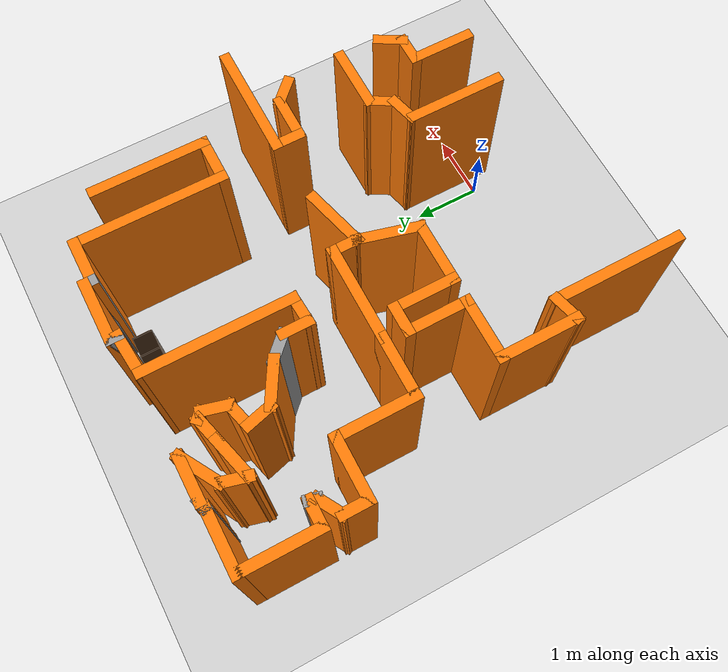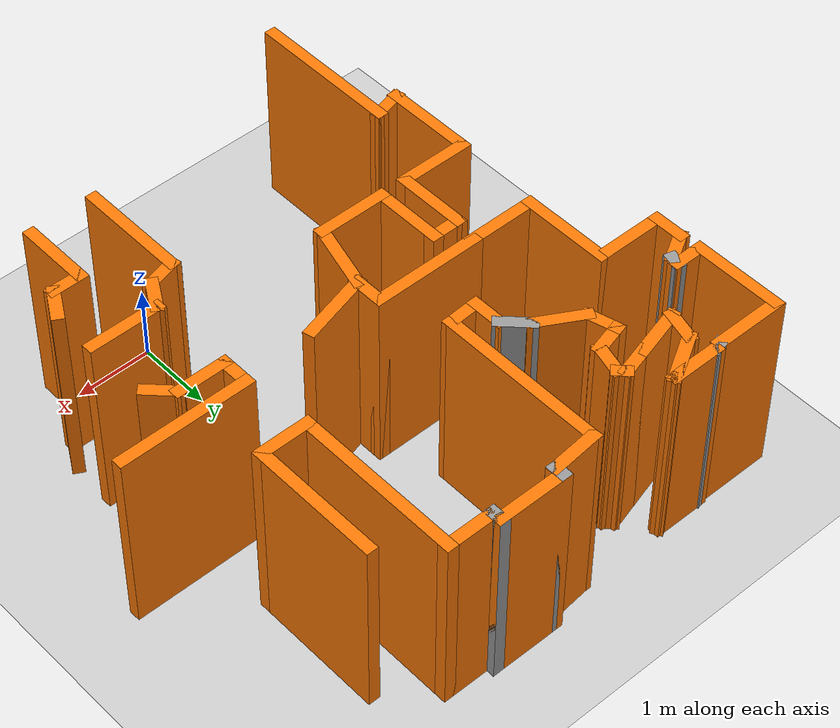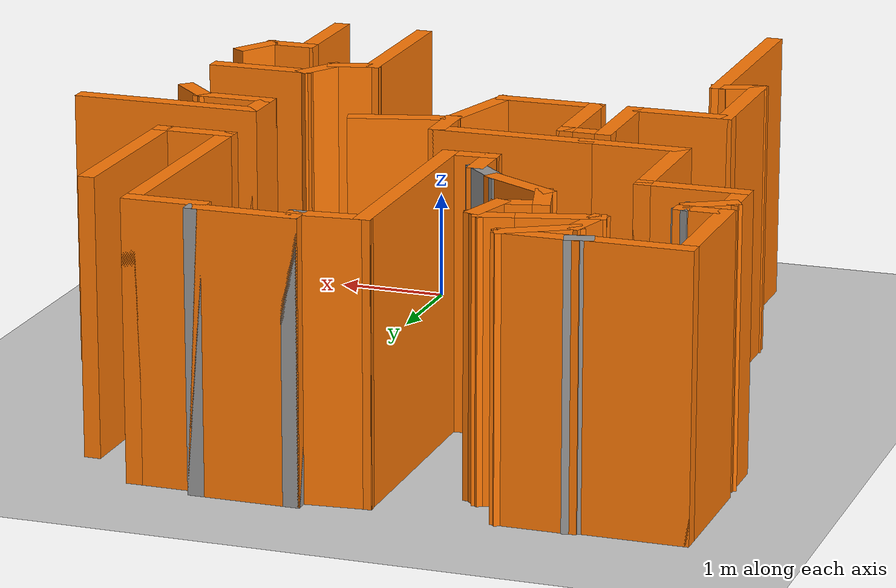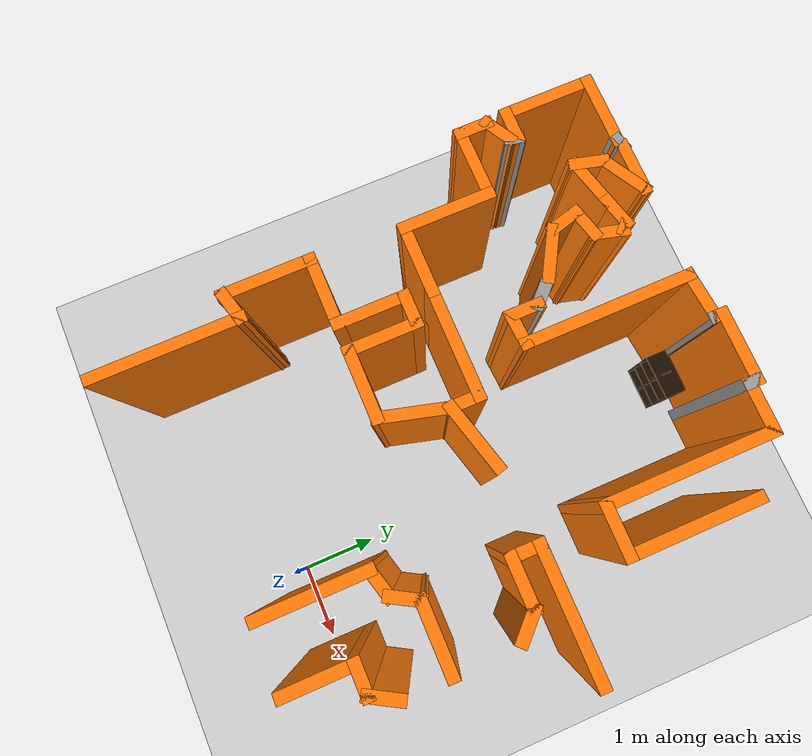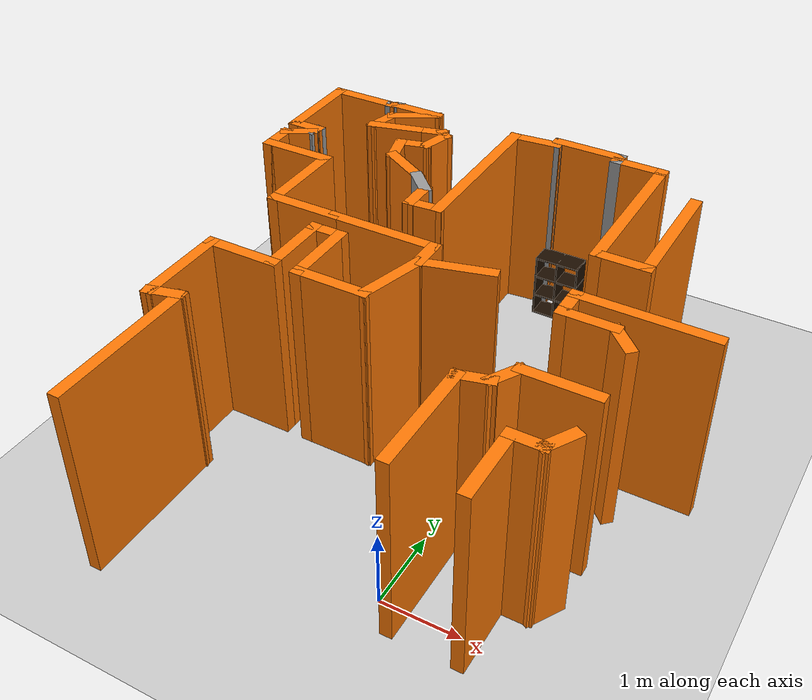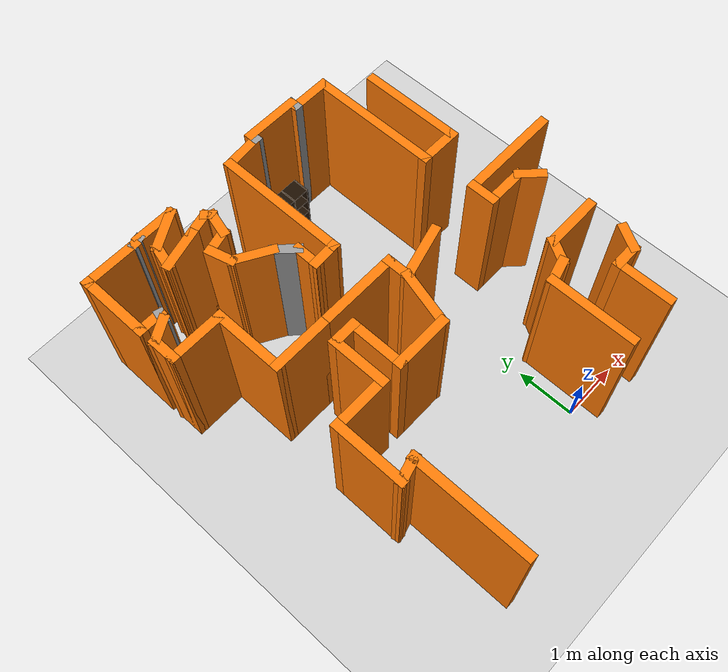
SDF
<sdf version="1.7">
 <world name="default">
  <model name="ground_plane">
   <static>1</static>
   <link name="link">
    <collision name="collision">
     <geometry><plane><normal>0 0 1</normal><size>100 100</size></plane></geometry>
     <surface>
      <contact><collide_bitmask>65535</collide_bitmask></contact>
      <friction><ode><mu>100</mu><mu2>50</mu2></ode></friction>
     </surface>
    </collision>
    <visual name="visual">
     <cast_shadows>0</cast_shadows>
     <geometry><plane><normal>0 0 1</normal><size>100 100</size></plane></geometry>
     <material>
      <script><uri>file://media/materials/scripts/gazebo.material</uri><name>Gazebo/Grey</name></script>
     </material>
    </visual>
   </link>
  </model>
  <model name="map_4">
   <pose>0.04124 -0.27835 0 0 -0 0</pose>
   <link name="Wall_0">
    <collision name="Wall_0_Collision">
     <geometry><box><size>2.25 0.15 2.5</size></box></geometry>
     <pose>0 0 1.25 0 -0 0</pose>
    </collision>
    <visual name="Wall_0_Visual">
     <pose>0 0 1.25 0 -0 0</pose>
     <geometry><box><size>2.25 0.15 2.5</size></box></geometry>
     <material>
      <script><uri>file://media/materials/scripts/gazebo.material</uri><name>Gazebo/Grey</name></script>
      <ambient>0.996078 0.47451 0.0196078 1</ambient>
     </material>
     <meta><layer>0</layer></meta>
    </visual>
    <pose>-1.38482 5.02012 0 0 -0 -1.5708</pose>
   </link>
   <link name="Wall_1">
    <collision name="Wall_1_Collision">
     <geometry><box><size>0.523847 0.15 2.5</size></box></geometry>
     <pose>0 0 1.25 0 -0 0</pose>
    </collision>
    <visual name="Wall_1_Visual">
     <pose>0 0 1.25 0 -0 0</pose>
     <geometry><box><size>0.523847 0.15 2.5</size></box></geometry>
     <material>
      <script><uri>file://media/materials/scripts/gazebo.material</uri><name>Gazebo/Grey</name></script>
      <ambient>0.996078 0.47451 0.0196078 1</ambient>
     </material>
     <meta><layer>0</layer></meta>
    </visual>
    <pose>-1.57139 3.95855 0 0 -0 -3.07968</pose>
   </link>
   <link name="Wall_118">
    <collision name="Wall_118_Collision">
     <geometry><box><size>1.5 0.15 2.5</size></box></geometry>
     <pose>0 0 1.25 0 -0 0</pose>
    </collision>
    <visual name="Wall_118_Visual">
     <pose>0 0 1.25 0 -0 0</pose>
     <geometry><box><size>1.5 0.15 2.5</size></box></geometry>
     <material>
      <script><uri>file://media/materials/scripts/gazebo.material</uri><name>Gazebo/Grey</name></script>
      <ambient>0.996078 0.47451 0.0196078 1</ambient>
     </material>
     <meta><layer>0</layer></meta>
    </visual>
    <pose>0.254748 0.668578 0 0 -0 1.5708</pose>
   </link>
   <link name="Wall_119">
    <collision name="Wall_119_Collision">
     <geometry><box><size>0.5 0.15 2.5</size></box></geometry>
     <pose>0 0 1.25 0 -0 0</pose>
    </collision>
    <visual name="Wall_119_Visual">
     <pose>0 0 1.25 0 -0 0</pose>
     <geometry><box><size>0.5 0.15 2.5</size></box></geometry>
     <material>
      <script><uri>file://media/materials/scripts/gazebo.material</uri><name>Gazebo/Grey</name></script>
      <ambient>0.996078 0.47451 0.0196078 1</ambient>
     </material>
     <meta><layer>0</layer></meta>
    </visual>
    <pose>0.423785 1.38887 0 0 -0 0.261799</pose>
   </link>
   <link name="Wall_12">
    <collision name="Wall_12_Collision">
     <geometry><box><size>0.75 0.15 2.5</size></box></geometry>
     <pose>0 0 1.25 0 -0 0</pose>
    </collision>
    <visual name="Wall_12_Visual">
     <pose>0 0 1.25 0 -0 0</pose>
     <geometry><box><size>0.75 0.15 2.5</size></box></geometry>
     <material>
      <script><uri>file://media/materials/scripts/gazebo.material</uri><name>Gazebo/Grey</name></script>
      <ambient>0.996078 0.47451 0.0196078 1</ambient>
     </material>
     <meta><layer>0</layer></meta>
    </visual>
    <pose>-2.88554 5.51369 0 0 -0 -2.87979</pose>
   </link>
   <link name="Wall_120">
    <collision name="Wall_120_Collision">
     <geometry><box><size>0.5 0.15 2.5</size></box></geometry>
     <pose>0 0 1.25 0 -0 0</pose>
    </collision>
    <visual name="Wall_120_Visual">
     <pose>0 0 1.25 0 -0 0</pose>
     <geometry><box><size>0.5 0.15 2.5</size></box></geometry>
     <material>
      <script><uri>file://media/materials/scripts/gazebo.material</uri><name>Gazebo/Grey</name></script>
      <ambient>0.996078 0.47451 0.0196078 1</ambient>
     </material>
     <meta><layer>0</layer></meta>
    </visual>
    <pose>0.680322 1.58572 0 0 -0 1.0472</pose>
   </link>
   <link name="Wall_121">
    <collision name="Wall_121_Collision">
     <geometry><box><size>1 0.15 2.5</size></box></geometry>
     <pose>0 0 1.25 0 -0 0</pose>
    </collision>
    <visual name="Wall_121_Visual">
     <pose>0 0 1.25 0 -0 0</pose>
     <geometry><box><size>1 0.15 2.5</size></box></geometry>
     <material>
      <script><uri>file://media/materials/scripts/gazebo.material</uri><name>Gazebo/Grey</name></script>
      <ambient>0.996078 0.47451 0.0196078 1</ambient>
     </material>
     <meta><layer>0</layer></meta>
    </visual>
    <pose>1.19282 1.73727 0 0 -0 0</pose>
   </link>
   <link name="Wall_123">
    <collision name="Wall_123_Collision">
     <geometry><box><size>0.5 0.15 2.5</size></box></geometry>
     <pose>0 0 1.25 0 -0 0</pose>
    </collision>
    <visual name="Wall_123_Visual">
     <pose>0 0 1.25 0 -0 0</pose>
     <geometry><box><size>0.5 0.15 2.5</size></box></geometry>
     <material>
      <script><uri>file://media/materials/scripts/gazebo.material</uri><name>Gazebo/Grey</name></script>
      <ambient>0.996078 0.47451 0.0196078 1</ambient>
     </material>
     <meta><layer>0</layer></meta>
    </visual>
    <pose>1.53032 0.985719 0 0 -0 -2.0944</pose>
   </link>
   <link name="Wall_124">
    <collision name="Wall_124_Collision">
     <geometry><box><size>0.5 0.15 2.5</size></box></geometry>
     <pose>0 0 1.25 0 -0 0</pose>
    </collision>
    <visual name="Wall_124_Visual">
     <pose>0 0 1.25 0 -0 0</pose>
     <geometry><box><size>0.5 0.15 2.5</size></box></geometry>
     <material>
      <script><uri>file://media/materials/scripts/gazebo.material</uri><name>Gazebo/Grey</name></script>
      <ambient>0.996078 0.47451 0.0196078 1</ambient>
     </material>
     <meta><layer>0</layer></meta>
    </visual>
    <pose>1.26782 0.834164 0 0 -0 3.14159</pose>
   </link>
   <link name="Wall_125">
    <collision name="Wall_125_Collision">
     <geometry><box><size>1 0.15 2.5</size></box></geometry>
     <pose>0 0 1.25 0 -0 0</pose>
    </collision>
    <visual name="Wall_125_Visual">
     <pose>0 0 1.25 0 -0 0</pose>
     <geometry><box><size>1 0.15 2.5</size></box></geometry>
     <material>
      <script><uri>file://media/materials/scripts/gazebo.material</uri><name>Gazebo/Grey</name></script>
      <ambient>0.996078 0.47451 0.0196078 1</ambient>
     </material>
     <meta><layer>0</layer></meta>
    </visual>
    <pose>1.09282 0.409164 0 0 -0 -1.5708</pose>
   </link>
   <link name="Wall_13">
    <collision name="Wall_13_Collision">
     <geometry><box><size>0.5 0.15 2.5</size></box></geometry>
     <pose>0 0 1.25 0 -0 0</pose>
    </collision>
    <visual name="Wall_13_Visual">
     <pose>0 0 1.25 0 -0 0</pose>
     <geometry><box><size>0.5 0.15 2.5</size></box></geometry>
     <material>
      <script><uri>file://media/materials/scripts/gazebo.material</uri><name>Gazebo/Grey</name></script>
      <ambient>0.996078 0.47451 0.0196078 1</ambient>
     </material>
     <meta><layer>0</layer></meta>
    </visual>
    <pose>-3.13003 5.60508 0 0 -0 1.309</pose>
   </link>
   <link name="Wall_14">
    <collision name="Wall_14_Collision">
     <geometry><box><size>0.75 0.15 2.5</size></box></geometry>
     <pose>0 0 1.25 0 -0 0</pose>
    </collision>
    <visual name="Wall_14_Visual">
     <pose>0 0 1.25 0 -0 0</pose>
     <geometry><box><size>0.75 0.15 2.5</size></box></geometry>
     <material>
      <script><uri>file://media/materials/scripts/gazebo.material</uri><name>Gazebo/Grey</name></script>
      <ambient>0.996078 0.47451 0.0196078 1</ambient>
     </material>
     <meta><layer>0</layer></meta>
    </visual>
    <pose>-2.82493 5.92412 0 0 -0 0.523599</pose>
   </link>
   <link name="Wall_149">
    <collision name="Wall_149_Collision">
     <geometry><box><size>0.5 0.15 2.5</size></box></geometry>
     <pose>0 0 1.25 0 -0 0</pose>
    </collision>
    <visual name="Wall_149_Visual">
     <pose>0 0 1.25 0 -0 0</pose>
     <geometry><box><size>0.5 0.15 2.5</size></box></geometry>
     <material>
      <script><uri>file://media/materials/scripts/gazebo.material</uri><name>Gazebo/Grey</name></script>
      <ambient>0.996078 0.47451 0.0196078 1</ambient>
     </material>
     <meta><layer>0</layer></meta>
    </visual>
    <pose>1.46437 2.70091 0 0 -0 2.35619</pose>
   </link>
   <link name="Wall_15">
    <collision name="Wall_15_Collision">
     <geometry><box><size>0.75 0.15 2.5</size></box></geometry>
     <pose>0 0 1.25 0 -0 0</pose>
    </collision>
    <visual name="Wall_15_Visual">
     <pose>0 0 1.25 0 -0 0</pose>
     <geometry><box><size>0.75 0.15 2.5</size></box></geometry>
     <material>
      <script><uri>file://media/materials/scripts/gazebo.material</uri><name>Gazebo/Grey</name></script>
      <ambient>0.996078 0.47451 0.0196078 1</ambient>
     </material>
     <meta><layer>0</layer></meta>
    </visual>
    <pose>-2.86512 6.07412 0 0 -0 3.14159</pose>
   </link>
   <link name="Wall_150">
    <collision name="Wall_150_Collision">
     <geometry><box><size>0.75 0.15 2.5</size></box></geometry>
     <pose>0 0 1.25 0 -0 0</pose>
    </collision>
    <visual name="Wall_150_Visual">
     <pose>0 0 1.25 0 -0 0</pose>
     <geometry><box><size>0.75 0.15 2.5</size></box></geometry>
     <material>
      <script><uri>file://media/materials/scripts/gazebo.material</uri><name>Gazebo/Grey</name></script>
      <ambient>0.996078 0.47451 0.0196078 1</ambient>
     </material>
     <meta><layer>0</layer></meta>
    </visual>
    <pose>1.04063 2.82465 0 0 -0 3.14159</pose>
   </link>
   <link name="Wall_151">
    <collision name="Wall_151_Collision">
     <geometry><box><size>0.5 0.15 2.5</size></box></geometry>
     <pose>0 0 1.25 0 -0 0</pose>
    </collision>
    <visual name="Wall_151_Visual">
     <pose>0 0 1.25 0 -0 0</pose>
     <geometry><box><size>0.5 0.15 2.5</size></box></geometry>
     <material>
      <script><uri>file://media/materials/scripts/gazebo.material</uri><name>Gazebo/Grey</name></script>
      <ambient>0.996078 0.47451 0.0196078 1</ambient>
     </material>
     <meta><layer>0</layer></meta>
    </visual>
    <pose>0.740628 2.99965 0 0 -0 1.5708</pose>
   </link>
   <link name="Wall_152">
    <collision name="Wall_152_Collision">
     <geometry><box><size>1.75 0.15 2.5</size></box></geometry>
     <pose>0 0 1.25 0 -0 0</pose>
    </collision>
    <visual name="Wall_152_Visual">
     <pose>0 0 1.25 0 -0 0</pose>
     <geometry><box><size>1.75 0.15 2.5</size></box></geometry>
     <material>
      <script><uri>file://media/materials/scripts/gazebo.material</uri><name>Gazebo/Grey</name></script>
      <ambient>0.996078 0.47451 0.0196078 1</ambient>
     </material>
     <meta><layer>0</layer></meta>
    </visual>
    <pose>1.54063 3.17465 0 0 -0 0</pose>
   </link>
   <link name="Wall_16">
    <collision name="Wall_16_Collision">
     <geometry><box><size>0.25 0.15 2.5</size></box></geometry>
     <pose>0 0 1.25 0 -0 0</pose>
    </collision>
    <visual name="Wall_16_Visual">
     <pose>0 0 1.25 0 -0 0</pose>
     <geometry><box><size>0.25 0.15 2.5</size></box></geometry>
     <material>
      <script><uri>file://media/materials/scripts/gazebo.material</uri><name>Gazebo/Grey</name></script>
      <ambient>1 1 1 1</ambient>
     </material>
     <meta><layer>0</layer></meta>
    </visual>
    <pose>-3.21341 6.06118 0 0 -0 -2.87979</pose>
   </link>
   <link name="Wall_160">
    <collision name="Wall_160_Collision">
     <geometry><box><size>1.75 0.15 2.5</size></box></geometry>
     <pose>0 0 1.25 0 -0 0</pose>
    </collision>
    <visual name="Wall_160_Visual">
     <pose>0 0 1.25 0 -0 0</pose>
     <geometry><box><size>1.75 0.15 2.5</size></box></geometry>
     <material>
      <script><uri>file://media/materials/scripts/gazebo.material</uri><name>Gazebo/Grey</name></script>
      <ambient>0.996078 0.47451 0.0196078 1</ambient>
     </material>
     <meta><layer>0</layer></meta>
    </visual>
    <pose>1.24063 4.82465 0 0 -0 -1.5708</pose>
   </link>
   <link name="Wall_161">
    <collision name="Wall_161_Collision">
     <geometry><box><size>0.75 0.15 2.5</size></box></geometry>
     <pose>0 0 1.25 0 -0 0</pose>
    </collision>
    <visual name="Wall_161_Visual">
     <pose>0 0 1.25 0 -0 0</pose>
     <geometry><box><size>0.75 0.15 2.5</size></box></geometry>
     <material>
      <script><uri>file://media/materials/scripts/gazebo.material</uri><name>Gazebo/Grey</name></script>
      <ambient>0.996078 0.47451 0.0196078 1</ambient>
     </material>
     <meta><layer>0</layer></meta>
    </visual>
    <pose>0.940628 4.02465 0 0 -0 3.14159</pose>
   </link>
   <link name="Wall_162">
    <collision name="Wall_162_Collision">
     <geometry><box><size>2.25 0.15 2.5</size></box></geometry>
     <pose>0 0 1.25 0 -0 0</pose>
    </collision>
    <visual name="Wall_162_Visual">
     <pose>0 0 1.25 0 -0 0</pose>
     <geometry><box><size>2.25 0.15 2.5</size></box></geometry>
     <material>
      <script><uri>file://media/materials/scripts/gazebo.material</uri><name>Gazebo/Grey</name></script>
      <ambient>0.996078 0.47451 0.0196078 1</ambient>
     </material>
     <meta><layer>0</layer></meta>
    </visual>
    <pose>0.640628 5.07465 0 0 -0 1.5708</pose>
   </link>
   <link name="Wall_163">
    <collision name="Wall_163_Collision">
     <geometry><box><size>0.75 0.15 2.5</size></box></geometry>
     <pose>0 0 1.25 0 -0 0</pose>
    </collision>
    <visual name="Wall_163_Visual">
     <pose>0 0 1.25 0 -0 0</pose>
     <geometry><box><size>0.75 0.15 2.5</size></box></geometry>
     <material>
      <script><uri>file://media/materials/scripts/gazebo.material</uri><name>Gazebo/Grey</name></script>
      <ambient>0.996078 0.47451 0.0196078 1</ambient>
     </material>
     <meta><layer>0</layer></meta>
    </visual>
    <pose>0.340628 6.12465 0 0 -0 3.14159</pose>
   </link>
   <link name="Wall_164">
    <collision name="Wall_164_Collision">
     <geometry><box><size>0.25 0.15 2.5</size></box></geometry>
     <pose>0 0 1.25 0 -0 0</pose>
    </collision>
    <visual name="Wall_164_Visual">
     <pose>0 0 1.25 0 -0 0</pose>
     <geometry><box><size>0.25 0.15 2.5</size></box></geometry>
     <material>
      <script><uri>file://media/materials/scripts/gazebo.material</uri><name>Gazebo/Grey</name></script>
      <ambient>1 1 1 1</ambient>
     </material>
     <meta><layer>0</layer></meta>
    </visual>
    <pose>0.040628 6.17465 0 0 -0 1.5708</pose>
   </link>
   <link name="Wall_165">
    <collision name="Wall_165_Collision">
     <geometry><box><size>1 0.15 2.5</size></box></geometry>
     <pose>0 0 1.25 0 -0 0</pose>
    </collision>
    <visual name="Wall_165_Visual">
     <pose>0 0 1.25 0 -0 0</pose>
     <geometry><box><size>1 0.15 2.5</size></box></geometry>
     <material>
      <script><uri>file://media/materials/scripts/gazebo.material</uri><name>Gazebo/Grey</name></script>
      <ambient>0.996078 0.47451 0.0196078 1</ambient>
     </material>
     <meta><layer>0</layer></meta>
    </visual>
    <pose>-0.384372 6.22465 0 0 -0 3.14159</pose>
   </link>
   <link name="Wall_166">
    <collision name="Wall_166_Collision">
     <geometry><box><size>0.25 0.15 2.5</size></box></geometry>
     <pose>0 0 1.25 0 -0 0</pose>
    </collision>
    <visual name="Wall_166_Visual">
     <pose>0 0 1.25 0 -0 0</pose>
     <geometry><box><size>0.25 0.15 2.5</size></box></geometry>
     <material>
      <script><uri>file://media/materials/scripts/gazebo.material</uri><name>Gazebo/Grey</name></script>
      <ambient>1 1 1 1</ambient>
     </material>
     <meta><layer>0</layer></meta>
    </visual>
    <pose>-0.809372 6.17465 0 0 -0 -1.5708</pose>
   </link>
   <link name="Wall_167">
    <collision name="Wall_167_Collision">
     <geometry><box><size>0.728027 0.15 2.5</size></box></geometry>
     <pose>0 0 1.25 0 -0 0</pose>
    </collision>
    <visual name="Wall_167_Visual">
     <pose>0 0 1.25 0 -0 0</pose>
     <geometry><box><size>0.728027 0.15 2.5</size></box></geometry>
     <material>
      <script><uri>file://media/materials/scripts/gazebo.material</uri><name>Gazebo/Grey</name></script>
      <ambient>0.996078 0.47451 0.0196078 1</ambient>
     </material>
     <meta><layer>0</layer></meta>
    </visual>
    <pose>-1.0971 6.09739 0 0 -0 -3.04711</pose>
   </link>
   <link name="Wall_17">
    <collision name="Wall_17_Collision">
     <geometry><box><size>1 0.15 2.5</size></box></geometry>
     <pose>0 0 1.25 0 -0 0</pose>
    </collision>
    <visual name="Wall_17_Visual">
     <pose>0 0 1.25 0 -0 0</pose>
     <geometry><box><size>1 0.15 2.5</size></box></geometry>
     <material>
      <script><uri>file://media/materials/scripts/gazebo.material</uri><name>Gazebo/Grey</name></script>
      <ambient>0.996078 0.47451 0.0196078 1</ambient>
     </material>
     <meta><layer>0</layer></meta>
    </visual>
    <pose>-3.68671 6.04824 0 0 -0 3.14159</pose>
   </link>
   <link name="Wall_176">
    <collision name="Wall_176_Collision">
     <geometry><box><size>1 0.15 2.5</size></box></geometry>
     <pose>0 0 1.25 0 -0 0</pose>
    </collision>
    <visual name="Wall_176_Visual">
     <pose>0 0 1.25 0 -0 0</pose>
     <geometry><box><size>1 0.15 2.5</size></box></geometry>
     <material>
      <script><uri>file://media/materials/scripts/gazebo.material</uri><name>Gazebo/Grey</name></script>
      <ambient>0.996078 0.47451 0.0196078 1</ambient>
     </material>
     <meta><layer>0</layer></meta>
    </visual>
    <pose>-0.630183 2.98664 0 0 -0 0.261799</pose>
   </link>
   <link name="Wall_18">
    <collision name="Wall_18_Collision">
     <geometry><box><size>1.25 0.15 2.5</size></box></geometry>
     <pose>0 0 1.25 0 -0 0</pose>
    </collision>
    <visual name="Wall_18_Visual">
     <pose>0 0 1.25 0 -0 0</pose>
     <geometry><box><size>1.25 0.15 2.5</size></box></geometry>
     <material>
      <script><uri>file://media/materials/scripts/gazebo.material</uri><name>Gazebo/Grey</name></script>
      <ambient>0.996078 0.47451 0.0196078 1</ambient>
     </material>
     <meta><layer>0</layer></meta>
    </visual>
    <pose>-4.11171 5.49824 0 0 -0 -1.5708</pose>
   </link>
   <link name="Wall_19">
    <collision name="Wall_19_Collision">
     <geometry><box><size>0.5 0.15 2.5</size></box></geometry>
     <pose>0 0 1.25 0 -0 0</pose>
    </collision>
    <visual name="Wall_19_Visual">
     <pose>0 0 1.25 0 -0 0</pose>
     <geometry><box><size>0.5 0.15 2.5</size></box></geometry>
     <material>
      <script><uri>file://media/materials/scripts/gazebo.material</uri><name>Gazebo/Grey</name></script>
      <ambient>0.996078 0.47451 0.0196078 1</ambient>
     </material>
     <meta><layer>0</layer></meta>
    </visual>
    <pose>-3.93671 4.94824 0 0 -0 0</pose>
   </link>
   <link name="Wall_2">
    <collision name="Wall_2_Collision">
     <geometry><box><size>0.5 0.15 2.5</size></box></geometry>
     <pose>0 0 1.25 0 -0 0</pose>
    </collision>
    <visual name="Wall_2_Visual">
     <pose>0 0 1.25 0 -0 0</pose>
     <geometry><box><size>0.5 0.15 2.5</size></box></geometry>
     <material>
      <script><uri>file://media/materials/scripts/gazebo.material</uri><name>Gazebo/Grey</name></script>
      <ambient>0.996078 0.47451 0.0196078 1</ambient>
     </material>
     <meta><layer>0</layer></meta>
    </visual>
    <pose>-1.75795 4.12199 0 0 -0 1.5708</pose>
   </link>
   <link name="Wall_20">
    <collision name="Wall_20_Collision">
     <geometry><box><size>0.25 0.15 2.5</size></box></geometry>
     <pose>0 0 1.25 0 -0 0</pose>
    </collision>
    <visual name="Wall_20_Visual">
     <pose>0 0 1.25 0 -0 0</pose>
     <geometry><box><size>0.25 0.15 2.5</size></box></geometry>
     <material>
      <script><uri>file://media/materials/scripts/gazebo.material</uri><name>Gazebo/Grey</name></script>
      <ambient>1 1 1 1</ambient>
     </material>
     <meta><layer>0</layer></meta>
    </visual>
    <pose>-3.77465 4.89994 0 0 -0 -1.8326</pose>
   </link>
   <link name="Wall_21">
    <collision name="Wall_21_Collision">
     <geometry><box><size>0.5 0.15 2.5</size></box></geometry>
     <pose>0 0 1.25 0 -0 0</pose>
    </collision>
    <visual name="Wall_21_Visual">
     <pose>0 0 1.25 0 -0 0</pose>
     <geometry><box><size>0.5 0.15 2.5</size></box></geometry>
     <material>
      <script><uri>file://media/materials/scripts/gazebo.material</uri><name>Gazebo/Grey</name></script>
      <ambient>0.996078 0.47451 0.0196078 1</ambient>
     </material>
     <meta><layer>0</layer></meta>
    </visual>
    <pose>-3.93915 4.76414 0 0 -0 -2.61799</pose>
   </link>
   <link name="Wall_22">
    <collision name="Wall_22_Collision">
     <geometry><box><size>0.5 0.15 2.5</size></box></geometry>
     <pose>0 0 1.25 0 -0 0</pose>
    </collision>
    <visual name="Wall_22_Visual">
     <pose>0 0 1.25 0 -0 0</pose>
     <geometry><box><size>0.5 0.15 2.5</size></box></geometry>
     <material>
      <script><uri>file://media/materials/scripts/gazebo.material</uri><name>Gazebo/Grey</name></script>
      <ambient>0.996078 0.47451 0.0196078 1</ambient>
     </material>
     <meta><layer>0</layer></meta>
    </visual>
    <pose>-4.0907 4.50164 0 0 -0 -1.5708</pose>
   </link>
   <link name="Wall_25">
    <collision name="Wall_25_Collision">
     <geometry><box><size>1 0.15 2.5</size></box></geometry>
     <pose>0 0 1.25 0 -0 0</pose>
    </collision>
    <visual name="Wall_25_Visual">
     <pose>0 0 1.25 0 -0 0</pose>
     <geometry><box><size>1 0.15 2.5</size></box></geometry>
     <material>
      <script><uri>file://media/materials/scripts/gazebo.material</uri><name>Gazebo/Grey</name></script>
      <ambient>0.996078 0.47451 0.0196078 1</ambient>
     </material>
     <meta><layer>0</layer></meta>
    </visual>
    <pose>-3.6657 4.32664 0 0 -0 0</pose>
   </link>
   <link name="Wall_26">
    <collision name="Wall_26_Collision">
     <geometry><box><size>1.25 0.15 2.5</size></box></geometry>
     <pose>0 0 1.25 0 -0 0</pose>
    </collision>
    <visual name="Wall_26_Visual">
     <pose>0 0 1.25 0 -0 0</pose>
     <geometry><box><size>1.25 0.15 2.5</size></box></geometry>
     <material>
      <script><uri>file://media/materials/scripts/gazebo.material</uri><name>Gazebo/Grey</name></script>
      <ambient>0.996078 0.47451 0.0196078 1</ambient>
     </material>
     <meta><layer>0</layer></meta>
    </visual>
    <pose>-3.2407 3.77664 0 0 -0 -1.5708</pose>
   </link>
   <link name="Wall_3">
    <collision name="Wall_3_Collision">
     <geometry><box><size>0.5 0.15 2.5</size></box></geometry>
     <pose>0 0 1.25 0 -0 0</pose>
    </collision>
    <visual name="Wall_3_Visual">
     <pose>0 0 1.25 0 -0 0</pose>
     <geometry><box><size>0.5 0.15 2.5</size></box></geometry>
     <material>
      <script><uri>file://media/materials/scripts/gazebo.material</uri><name>Gazebo/Grey</name></script>
      <ambient>1 1 1 1</ambient>
     </material>
     <meta><layer>0</layer></meta>
    </visual>
    <pose>-1.88169 4.42073 0 0 -0 2.35619</pose>
   </link>
   <link name="Wall_30">
    <collision name="Wall_30_Collision">
     <geometry><box><size>1 0.15 2.5</size></box></geometry>
     <pose>0 0 1.25 0 -0 0</pose>
    </collision>
    <visual name="Wall_30_Visual">
     <pose>0 0 1.25 0 -0 0</pose>
     <geometry><box><size>1 0.15 2.5</size></box></geometry>
     <material>
      <script><uri>file://media/materials/scripts/gazebo.material</uri><name>Gazebo/Grey</name></script>
      <ambient>0.996078 0.47451 0.0196078 1</ambient>
     </material>
     <meta><layer>0</layer></meta>
    </visual>
    <pose>-2.8157 3.22664 0 0 -0 0</pose>
   </link>
   <link name="Wall_31">
    <collision name="Wall_31_Collision">
     <geometry><box><size>1.5 0.15 2.5</size></box></geometry>
     <pose>0 0 1.25 0 -0 0</pose>
    </collision>
    <visual name="Wall_31_Visual">
     <pose>0 0 1.25 0 -0 0</pose>
     <geometry><box><size>1.5 0.15 2.5</size></box></geometry>
     <material>
      <script><uri>file://media/materials/scripts/gazebo.material</uri><name>Gazebo/Grey</name></script>
      <ambient>0.996078 0.47451 0.0196078 1</ambient>
     </material>
     <meta><layer>0</layer></meta>
    </visual>
    <pose>-1.7157 3.22664 0 0 -0 0</pose>
   </link>
   <link name="Wall_32">
    <collision name="Wall_32_Collision">
     <geometry><box><size>0.5 0.15 2.5</size></box></geometry>
     <pose>0 0 1.25 0 -0 0</pose>
    </collision>
    <visual name="Wall_32_Visual">
     <pose>0 0 1.25 0 -0 0</pose>
     <geometry><box><size>0.5 0.15 2.5</size></box></geometry>
     <material>
      <script><uri>file://media/materials/scripts/gazebo.material</uri><name>Gazebo/Grey</name></script>
      <ambient>0.996078 0.47451 0.0196078 1</ambient>
     </material>
     <meta><layer>0</layer></meta>
    </visual>
    <pose>-1.0407 3.05164 0 0 -0 -1.5708</pose>
   </link>
   <link name="Wall_33">
    <collision name="Wall_33_Collision">
     <geometry><box><size>1 0.15 2.5</size></box></geometry>
     <pose>0 0 1.25 0 -0 0</pose>
    </collision>
    <visual name="Wall_33_Visual">
     <pose>0 0 1.25 0 -0 0</pose>
     <geometry><box><size>1 0.15 2.5</size></box></geometry>
     <material>
      <script><uri>file://media/materials/scripts/gazebo.material</uri><name>Gazebo/Grey</name></script>
      <ambient>0.996078 0.47451 0.0196078 1</ambient>
     </material>
     <meta><layer>0</layer></meta>
    </visual>
    <pose>-1.1507 2.46612 0 0 -0 -1.8326</pose>
   </link>
   <link name="Wall_34">
    <collision name="Wall_34_Collision">
     <geometry><box><size>1 0.15 2.5</size></box></geometry>
     <pose>0 0 1.25 0 -0 0</pose>
    </collision>
    <visual name="Wall_34_Visual">
     <pose>0 0 1.25 0 -0 0</pose>
     <geometry><box><size>1 0.15 2.5</size></box></geometry>
     <material>
      <script><uri>file://media/materials/scripts/gazebo.material</uri><name>Gazebo/Grey</name></script>
      <ambient>0.996078 0.47451 0.0196078 1</ambient>
     </material>
     <meta><layer>0</layer></meta>
    </visual>
    <pose>-1.6857 2.05561 0 0 -0 3.14159</pose>
   </link>
   <link name="Wall_35">
    <collision name="Wall_35_Collision">
     <geometry><box><size>1 0.15 2.5</size></box></geometry>
     <pose>0 0 1.25 0 -0 0</pose>
    </collision>
    <visual name="Wall_35_Visual">
     <pose>0 0 1.25 0 -0 0</pose>
     <geometry><box><size>1 0.15 2.5</size></box></geometry>
     <material>
      <script><uri>file://media/materials/scripts/gazebo.material</uri><name>Gazebo/Grey</name></script>
      <ambient>0.996078 0.47451 0.0196078 1</ambient>
     </material>
     <meta><layer>0</layer></meta>
    </visual>
    <pose>-2.1107 2.48061 0 0 -0 1.5708</pose>
   </link>
   <link name="Wall_36">
    <collision name="Wall_36_Collision">
     <geometry><box><size>0.5 0.15 2.5</size></box></geometry>
     <pose>0 0 1.25 0 -0 0</pose>
    </collision>
    <visual name="Wall_36_Visual">
     <pose>0 0 1.25 0 -0 0</pose>
     <geometry><box><size>0.5 0.15 2.5</size></box></geometry>
     <material>
      <script><uri>file://media/materials/scripts/gazebo.material</uri><name>Gazebo/Grey</name></script>
      <ambient>0.996078 0.47451 0.0196078 1</ambient>
     </material>
     <meta><layer>0</layer></meta>
    </visual>
    <pose>-2.2857 2.90561 0 0 -0 3.14159</pose>
   </link>
   <link name="Wall_37">
    <collision name="Wall_37_Collision">
     <geometry><box><size>1 0.15 2.5</size></box></geometry>
     <pose>0 0 1.25 0 -0 0</pose>
    </collision>
    <visual name="Wall_37_Visual">
     <pose>0 0 1.25 0 -0 0</pose>
     <geometry><box><size>1 0.15 2.5</size></box></geometry>
     <material>
      <script><uri>file://media/materials/scripts/gazebo.material</uri><name>Gazebo/Grey</name></script>
      <ambient>0.996078 0.47451 0.0196078 1</ambient>
     </material>
     <meta><layer>0</layer></meta>
    </visual>
    <pose>-2.4607 2.48061 0 0 -0 -1.5708</pose>
   </link>
   <link name="Wall_38">
    <collision name="Wall_38_Collision">
     <geometry><box><size>1 0.15 2.5</size></box></geometry>
     <pose>0 0 1.25 0 -0 0</pose>
    </collision>
    <visual name="Wall_38_Visual">
     <pose>0 0 1.25 0 -0 0</pose>
     <geometry><box><size>1 0.15 2.5</size></box></geometry>
     <material>
      <script><uri>file://media/materials/scripts/gazebo.material</uri><name>Gazebo/Grey</name></script>
      <ambient>0.996078 0.47451 0.0196078 1</ambient>
     </material>
     <meta><layer>0</layer></meta>
    </visual>
    <pose>-2.8857 2.05561 0 0 -0 3.14159</pose>
   </link>
   <link name="Wall_4">
    <collision name="Wall_4_Collision">
     <geometry><box><size>0.75 0.15 2.5</size></box></geometry>
     <pose>0 0 1.25 0 -0 0</pose>
    </collision>
    <visual name="Wall_4_Visual">
     <pose>0 0 1.25 0 -0 0</pose>
     <geometry><box><size>0.75 0.15 2.5</size></box></geometry>
     <material>
      <script><uri>file://media/materials/scripts/gazebo.material</uri><name>Gazebo/Grey</name></script>
      <ambient>0.996078 0.47451 0.0196078 1</ambient>
     </material>
     <meta><layer>0</layer></meta>
    </visual>
    <pose>-2.26525 4.69448 0 0 -0 2.61799</pose>
   </link>
   <link name="Wall_43">
    <collision name="Wall_43_Collision">
     <geometry><box><size>1.25 0.15 2.5</size></box></geometry>
     <pose>0 0 1.25 0 -0 0</pose>
    </collision>
    <visual name="Wall_43_Visual">
     <pose>0 0 1.25 0 -0 0</pose>
     <geometry><box><size>1.25 0.15 2.5</size></box></geometry>
     <material>
      <script><uri>file://media/materials/scripts/gazebo.material</uri><name>Gazebo/Grey</name></script>
      <ambient>0.996078 0.47451 0.0196078 1</ambient>
     </material>
     <meta><layer>0</layer></meta>
    </visual>
    <pose>-3.3107 1.50561 0 0 -0 -1.5708</pose>
   </link>
   <link name="Wall_44">
    <collision name="Wall_44_Collision">
     <geometry><box><size>0.5 0.15 2.5</size></box></geometry>
     <pose>0 0 1.25 0 -0 0</pose>
    </collision>
    <visual name="Wall_44_Visual">
     <pose>0 0 1.25 0 -0 0</pose>
     <geometry><box><size>0.5 0.15 2.5</size></box></geometry>
     <material>
      <script><uri>file://media/materials/scripts/gazebo.material</uri><name>Gazebo/Grey</name></script>
      <ambient>0.996078 0.47451 0.0196078 1</ambient>
     </material>
     <meta><layer>0</layer></meta>
    </visual>
    <pose>-3.14166 1.0009 0 0 -0 0.261799</pose>
   </link>
   <link name="Wall_46">
    <collision name="Wall_46_Collision">
     <geometry><box><size>2 0.15 2.5</size></box></geometry>
     <pose>0 0 1.25 0 -0 0</pose>
    </collision>
    <visual name="Wall_46_Visual">
     <pose>0 0 1.25 0 -0 0</pose>
     <geometry><box><size>2 0.15 2.5</size></box></geometry>
     <material>
      <script><uri>file://media/materials/scripts/gazebo.material</uri><name>Gazebo/Grey</name></script>
      <ambient>0.996078 0.47451 0.0196078 1</ambient>
     </material>
     <meta><layer>0</layer></meta>
    </visual>
    <pose>-2.97262 0.121192 0 0 -0 -1.5708</pose>
   </link>
   <link name="Wall_5">
    <collision name="Wall_5_Collision">
     <geometry><box><size>0.5 0.15 2.5</size></box></geometry>
     <pose>0 0 1.25 0 -0 0</pose>
    </collision>
    <visual name="Wall_5_Visual">
     <pose>0 0 1.25 0 -0 0</pose>
     <geometry><box><size>0.5 0.15 2.5</size></box></geometry>
     <material>
      <script><uri>file://media/materials/scripts/gazebo.material</uri><name>Gazebo/Grey</name></script>
      <ambient>0.996078 0.47451 0.0196078 1</ambient>
     </material>
     <meta><layer>0</layer></meta>
    </visual>
    <pose>-2.57035 5.01351 0 0 -0 1.8326</pose>
   </link>
   <link name="Wall_6">
    <collision name="Wall_6_Collision">
     <geometry><box><size>0.5 0.15 2.5</size></box></geometry>
     <pose>0 0 1.25 0 -0 0</pose>
    </collision>
    <visual name="Wall_6_Visual">
     <pose>0 0 1.25 0 -0 0</pose>
     <geometry><box><size>0.5 0.15 2.5</size></box></geometry>
     <material>
      <script><uri>file://media/materials/scripts/gazebo.material</uri><name>Gazebo/Grey</name></script>
      <ambient>0.996078 0.47451 0.0196078 1</ambient>
     </material>
     <meta><layer>0</layer></meta>
    </visual>
    <pose>-2.4466 5.22784 0 0 -0 0.261799</pose>
   </link>
   <link name="Wall_7">
    <collision name="Wall_7_Collision">
     <geometry><box><size>0.5 0.15 2.5</size></box></geometry>
     <pose>0 0 1.25 0 -0 0</pose>
    </collision>
    <visual name="Wall_7_Visual">
     <pose>0 0 1.25 0 -0 0</pose>
     <geometry><box><size>0.5 0.15 2.5</size></box></geometry>
     <material>
      <script><uri>file://media/materials/scripts/gazebo.material</uri><name>Gazebo/Grey</name></script>
      <ambient>0.996078 0.47451 0.0196078 1</ambient>
     </material>
     <meta><layer>0</layer></meta>
    </visual>
    <pose>-2.23227 5.44217 0 0 -0 1.309</pose>
   </link>
   <link name="Wall_8">
    <collision name="Wall_8_Collision">
     <geometry><box><size>0.25 0.15 2.5</size></box></geometry>
     <pose>0 0 1.25 0 -0 0</pose>
    </collision>
    <visual name="Wall_8_Visual">
     <pose>0 0 1.25 0 -0 0</pose>
     <geometry><box><size>0.25 0.15 2.5</size></box></geometry>
     <material>
      <script><uri>file://media/materials/scripts/gazebo.material</uri><name>Gazebo/Grey</name></script>
      <ambient>0.996078 0.47451 0.0196078 1</ambient>
     </material>
     <meta><layer>0</layer></meta>
    </visual>
    <pose>-2.22234 5.64657 0 0 -0 2.35619</pose>
   </link>
   <link name="Wall_9">
    <collision name="Wall_9_Collision">
     <geometry><box><size>0.5 0.15 2.5</size></box></geometry>
     <pose>0 0 1.25 0 -0 0</pose>
    </collision>
    <visual name="Wall_9_Visual">
     <pose>0 0 1.25 0 -0 0</pose>
     <geometry><box><size>0.5 0.15 2.5</size></box></geometry>
     <material>
      <script><uri>file://media/materials/scripts/gazebo.material</uri><name>Gazebo/Grey</name></script>
      <ambient>0.996078 0.47451 0.0196078 1</ambient>
     </material>
     <meta><layer>0</layer></meta>
    </visual>
    <pose>-2.42673 5.63663 0 0 -0 -2.87979</pose>
   </link>
   <static>1</static>
  </model>
  <model name="6_Cube_StorageE">
   <link name="Wall_0">
    <pose>0 0 0.01 0 -0 0</pose>
    <inertial>
     <mass>1.6201</mass>
     <inertia><ixx>0.0119</ixx><iyy>0.0631</iyy><izz>0.0513</izz><ixy>0</ixy><ixz>0</ixz><iyz>0</iyz></inertia>
    </inertial>
    <collision name="Wall_0_Collision"><geometry><box><size>0.616 0.296 0.02</size></box></geometry></collision>
    <visual name="Wall_0_Visual">
     <geometry><box><size>0.616 0.296 0.02</size></box></geometry>
     <material>
      <script><uri>file://media/materials/scripts/gazebo.material</uri><name>Gazebo/Grey</name></script>
      <ambient>0.105882 0.0509804 0 1</ambient>
     </material>
    </visual>
   </link>
   <joint name="0_2" type="fixed">
    <pose>-0.308 0 0 0 -0 0</pose>
    <parent>Wall_2</parent>
    <child>Wall_0</child>
    <axis><xyz>1 0 0</xyz><limit><lower>-1e+16</lower><upper>1e+16</upper></limit></axis>
   </joint>
   <joint name="0_12" type="fixed">
    <parent>Wall_12</parent>
    <child>Wall_0</child>
    <axis><xyz>0 0 1</xyz><limit><lower>-1e+16</lower><upper>1e+16</upper></limit></axis>
   </joint>
   <joint name="0_4" type="fixed">
    <pose>0.308 0 0 0 -0 0</pose>
    <parent>Wall_4</parent>
    <child>Wall_0</child>
    <axis><xyz>1 0 0</xyz><limit><lower>-1e+16</lower><upper>1e+16</upper></limit></axis>
   </joint>
   <link name="Wall_10">
    <pose>0 0 0.61 0 -0 0</pose>
    <inertial>
     <mass>1.6201</mass>
     <inertia><ixx>0.0119</ixx><iyy>0.0631</iyy><izz>0.0513</izz><ixy>0</ixy><ixz>0</ixz><iyz>0</iyz></inertia>
    </inertial>
    <collision name="Wall_10_Collision"><geometry><box><size>0.616 0.296 0.02</size></box></geometry></collision>
    <visual name="Wall_10_Visual">
     <geometry><box><size>0.616 0.296 0.02</size></box></geometry>
     <material>
      <script><uri>file://media/materials/scripts/gazebo.material</uri><name>Gazebo/Grey</name></script>
      <ambient>0.105882 0.0509804 0 1</ambient>
     </material>
    </visual>
   </link>
   <joint name="10_2" type="fixed">
    <pose>-0.308 0 0 0 -0 0</pose>
    <parent>Wall_2</parent>
    <child>Wall_10</child>
    <axis><xyz>1 0 0</xyz><limit><lower>-1e+16</lower><upper>1e+16</upper></limit></axis>
   </joint>
   <joint name="10_12" type="fixed">
    <parent>Wall_12</parent>
    <child>Wall_10</child>
    <axis><xyz>0 0 1</xyz><limit><lower>-1e+16</lower><upper>1e+16</upper></limit></axis>
   </joint>
   <joint name="10_4" type="fixed">
    <pose>0.308 0 0 0 -0 0</pose>
    <parent>Wall_4</parent>
    <child>Wall_10</child>
    <axis><xyz>1 0 0</xyz><limit><lower>-1e+16</lower><upper>1e+16</upper></limit></axis>
   </joint>
   <link name="Wall_12">
    <pose>0 0 0.4575 0 -0 0</pose>
    <inertial>
     <mass>2.4065</mass>
     <inertia><ixx>0.0177</ixx><iyy>0.1855</iyy><izz>0.168</izz><ixy>0</ixy><ixz>0</ixz><iyz>0</iyz></inertia>
    </inertial>
    <collision name="Wall_12_Collision"><geometry><box><size>0.02 0.296 0.915</size></box></geometry></collision>
    <visual name="Wall_12_Visual">
     <geometry><box><size>0.02 0.296 0.915</size></box></geometry>
     <material>
      <script><uri>file://media/materials/scripts/gazebo.material</uri><name>Gazebo/Grey</name></script>
      <ambient>0.105882 0.0509804 0 1</ambient>
     </material>
    </visual>
   </link>
   <link name="Wall_2">
    <pose>-0.298 0 0.4575 0 -0 0</pose>
    <inertial>
     <mass>2.4065</mass>
     <inertia><ixx>0.0177</ixx><iyy>0.1855</iyy><izz>0.168</izz><ixy>0</ixy><ixz>0</ixz><iyz>0</iyz></inertia>
    </inertial>
    <collision name="Wall_2_Collision"><geometry><box><size>0.02 0.296 0.915</size></box></geometry></collision>
    <visual name="Wall_2_Visual">
     <geometry><box><size>0.02 0.296 0.915</size></box></geometry>
     <material>
      <script><uri>file://media/materials/scripts/gazebo.material</uri><name>Gazebo/Grey</name></script>
      <ambient>0.105882 0.0509804 0 1</ambient>
     </material>
    </visual>
   </link>
   <link name="Wall_4">
    <pose>0.298 0 0.4575 0 -0 0</pose>
    <inertial>
     <mass>2.4065</mass>
     <inertia><ixx>0.0177</ixx><iyy>0.1855</iyy><izz>0.168</izz><ixy>0</ixy><ixz>0</ixz><iyz>0</iyz></inertia>
    </inertial>
    <collision name="Wall_4_Collision"><geometry><box><size>0.02 0.296 0.915</size></box></geometry></collision>
    <visual name="Wall_4_Visual">
     <geometry><box><size>0.02 0.296 0.915</size></box></geometry>
     <material>
      <script><uri>file://media/materials/scripts/gazebo.material</uri><name>Gazebo/Grey</name></script>
      <ambient>0.105882 0.0509804 0 1</ambient>
     </material>
    </visual>
   </link>
   <link name="Wall_6">
    <pose>0 0 0.905 0 -0 0</pose>
    <inertial>
     <mass>1.6201</mass>
     <inertia><ixx>0.0119</ixx><iyy>0.0631</iyy><izz>0.0513</izz><ixy>0</ixy><ixz>0</ixz><iyz>0</iyz></inertia>
    </inertial>
    <collision name="Wall_6_Collision"><geometry><box><size>0.616 0.296 0.02</size></box></geometry></collision>
    <visual name="Wall_6_Visual">
     <geometry><box><size>0.616 0.296 0.02</size></box></geometry>
     <material>
      <script><uri>file://media/materials/scripts/gazebo.material</uri><name>Gazebo/Grey</name></script>
      <ambient>0.105882 0.0509804 0 1</ambient>
     </material>
    </visual>
   </link>
   <joint name="6_2" type="fixed">
    <pose>-0.308 0 0 0 -0 0</pose>
    <parent>Wall_2</parent>
    <child>Wall_6</child>
    <axis><xyz>2 0 0</xyz><limit><lower>-1e+16</lower><upper>1e+16</upper></limit></axis>
   </joint>
   <joint name="6_12" type="fixed">
    <parent>Wall_12</parent>
    <child>Wall_6</child>
    <axis><xyz>0 0 1</xyz><limit><lower>-1e+16</lower><upper>1e+16</upper></limit></axis>
   </joint>
   <joint name="6_4" type="fixed">
    <pose>0.308 0 0 0 -0 0</pose>
    <parent>Wall_4</parent>
    <child>Wall_6</child>
    <axis><xyz>1 0 0</xyz><limit><lower>-1e+16</lower><upper>1e+16</upper></limit></axis>
   </joint>
   <link name="Wall_8">
    <pose>0 0 0.305 0 -0 0</pose>
    <inertial>
     <mass>1.6201</mass>
     <inertia><ixx>0.0119</ixx><iyy>0.0631</iyy><izz>0.0513</izz><ixy>0</ixy><ixz>0</ixz><iyz>0</iyz></inertia>
    </inertial>
    <collision name="Wall_8_Collision"><geometry><box><size>0.616 0.296 0.02</size></box></geometry></collision>
    <visual name="Wall_8_Visual">
     <geometry><box><size>0.616 0.296 0.02</size></box></geometry>
     <material>
      <script><uri>file://media/materials/scripts/gazebo.material</uri><name>Gazebo/Grey</name></script>
      <ambient>0.105882 0.0509804 0 1</ambient>
     </material>
    </visual>
   </link>
   <joint name="8_2" type="fixed">
    <pose>-0.308 0 0 0 -0 0</pose>
    <parent>Wall_2</parent>
    <child>Wall_8</child>
    <axis><xyz>1 0 0</xyz><limit><lower>-1e+16</lower><upper>1e+16</upper></limit></axis>
   </joint>
   <joint name="8_12" type="fixed">
    <parent>Wall_12</parent>
    <child>Wall_8</child>
    <axis><xyz>0 0 1</xyz><limit><lower>-1e+16</lower><upper>1e+16</upper></limit></axis>
   </joint>
   <joint name="8_4" type="fixed">
    <pose>0.308 0 0 0 -0 0</pose>
    <parent>Wall_4</parent>
    <child>Wall_8</child>
    <axis><xyz>1 0 0</xyz><limit><lower>-1e+16</lower><upper>1e+16</upper></limit></axis>
   </joint>
   <static>1</static>
   <pose>-0.471928 5.64068 0 0 -0 0</pose>
  </model>
 </world>
</sdf>
